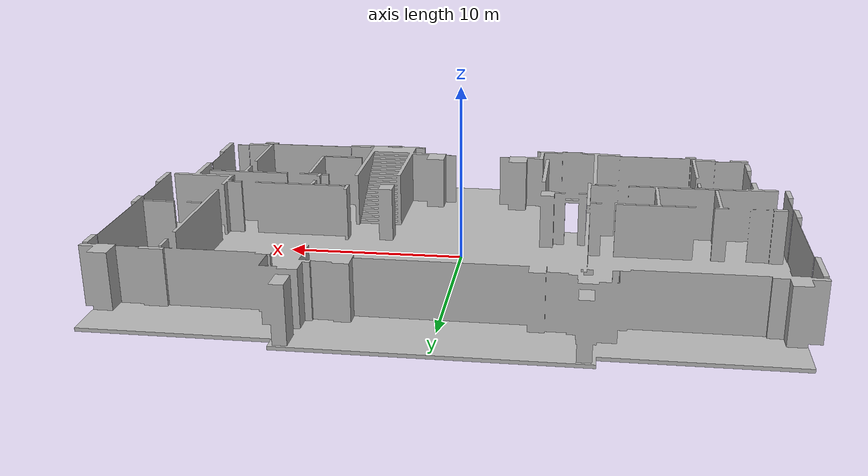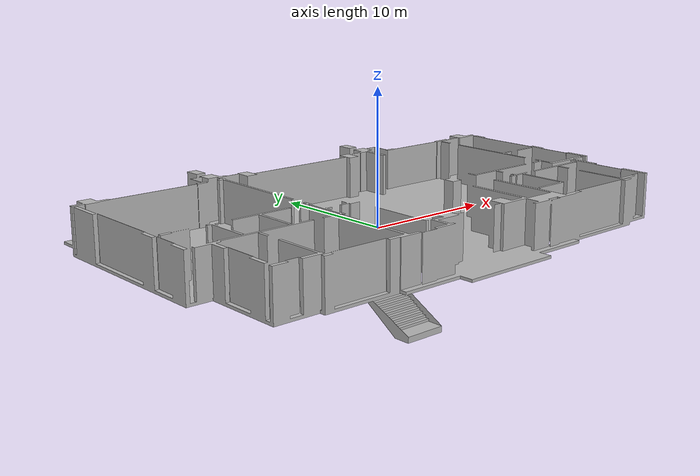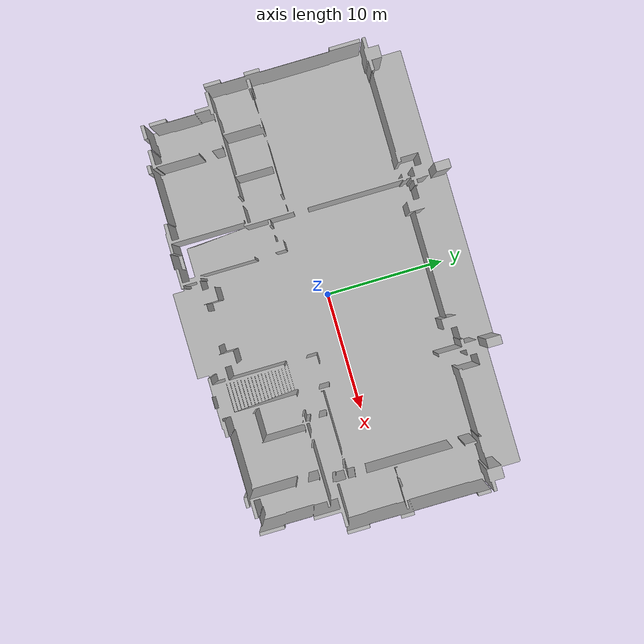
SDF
<?xml version="1.0" ?>
<sdf version="1.9">

  <model name="villa_1F">

    <static>true</static>

    <link name="villa_1F_link">

      <visual name="villa_1F_visual">
        <geometry>
          <mesh>
            <uri>meshes/villa_1F.obj</uri>
          </mesh>
        </geometry>
      </visual>

      <collision name="villa_1F_collision">
        <geometry>
          <mesh>
            <uri>meshes/villa_1F.obj</uri>
          </mesh>
        </geometry>
      </collision>

    </link>

  </model>

</sdf>
